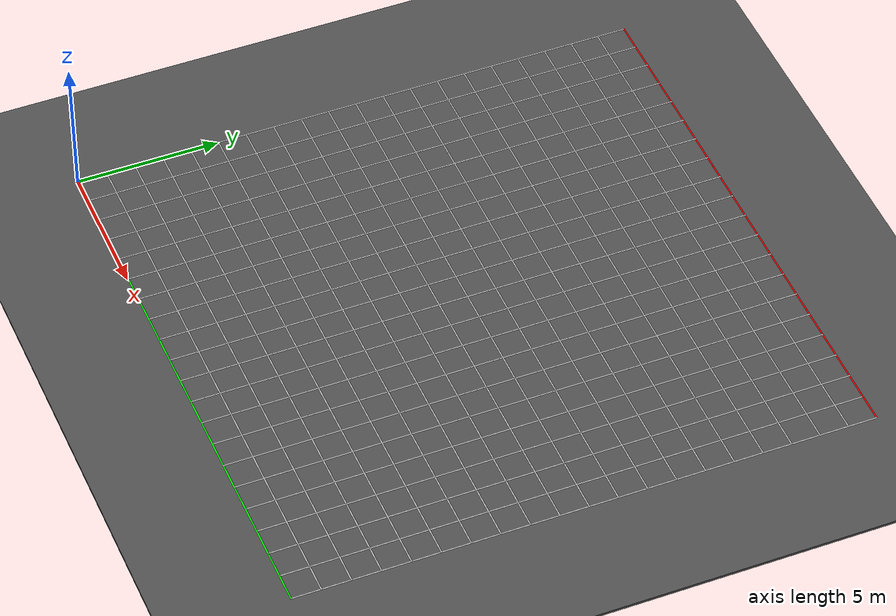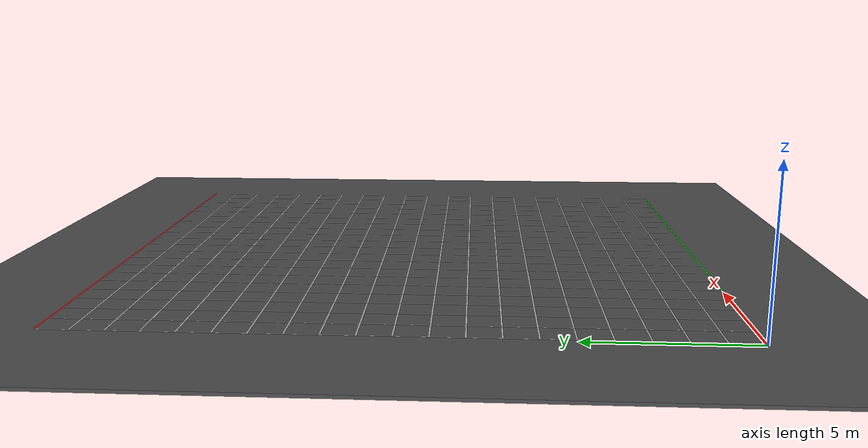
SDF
<sdf version="1.6">
 <world name="default">
  <light name="sun" type="directional">
   <pose>0 0 10 0 0 0</pose>
   <diffuse>0.8 0.8 0.8 1</diffuse>
   <specular>0.2 0.2 0.2 1</specular>
   <attenuation>
    <range>1000</range>
    <constant>0.9</constant>
    <linear>0.01</linear>
    <quadratic>0.001</quadratic>
   </attenuation>
   <direction>-0.5 0.1 -0.9</direction>
  </light>
  <model name="ground_plane">
   <static>1</static>
   <link name="link">
    <collision name="collision">
     <geometry><plane><normal>0 0 1</normal><size>100 100</size></plane></geometry>
     <surface><friction><ode><mu>100</mu><mu2>50</mu2></ode></friction></surface>
    </collision>
    <visual name="visual">
     <cast_shadows>0</cast_shadows>
     <geometry><plane><normal>0 0 1</normal><size>100 100</size></plane></geometry>
     <material>
      <script><uri>file://media/materials/scripts/gazebo.material</uri><name>Gazebo/Grey</name></script>
     </material>
    </visual>
   </link>
  </model>
  <gravity>0 0 -9.8</gravity>
  <magnetic_field>6e-06 2.3e-05 -4.2e-05</magnetic_field>
  <atmosphere type="adiabatic"/>
  <physics name="default_physics" default="0" type="ode">
   <max_step_size>0.001</max_step_size>
   <real_time_factor>1</real_time_factor>
   <real_time_update_rate>1000</real_time_update_rate>
  </physics>
  <scene><ambient>0.4 0.4 0.4 1</ambient><background>0.7 0.7 0.7 1</background><shadows>1</shadows></scene>
  <spherical_coordinates>
   <surface_model>EARTH_WGS84</surface_model>
   <latitude_deg>0</latitude_deg>
   <longitude_deg>0</longitude_deg>
   <elevation>0</elevation>
   <heading_deg>0</heading_deg>
  </spherical_coordinates>
  <model name="tape_court">
   <pose>0 0 0.05 0 0 0</pose>
   <link name="tape_strip::tape">
    <visual name="tape_strip::tape"><geometry><box><size>20.05 0.05 0.0003</size></box></geometry></visual>
    <pose>0.025 10.025 0 0 0 1.5708</pose>
   </link>
   <link name="tape_strip::tape">
    <visual name="tape_strip::tape"><geometry><box><size>20.05 0.05 0.0003</size></box></geometry></visual>
    <pose>0.025 10.025 0 0 0 1.5708</pose>
   </link>
   <link name="tape_strip::tape">
    <visual name="tape_strip::tape"><geometry><box><size>20.05 0.05 0.0003</size></box></geometry></visual>
    <pose>1.025 10.025 0 0 0 1.5708</pose>
   </link>
   <link name="tape_strip::tape">
    <visual name="tape_strip::tape"><geometry><box><size>20.05 0.05 0.0003</size></box></geometry></visual>
    <pose>2.025 10.025 0 0 0 1.5708</pose>
   </link>
   <static>1</static>
   <link name="tape_strip::tape">
    <visual name="tape_strip::tape"><geometry><box><size>20.05 0.05 0.0003</size></box></geometry></visual>
    <pose>3.025 10.025 0 0 0 1.5708</pose>
   </link>
   <static>1</static>
   <link name="tape_strip::tape">
    <visual name="tape_strip::tape"><geometry><box><size>20.05 0.05 0.0003</size></box></geometry></visual>
    <pose>4.025 10.025 0 0 0 1.5708</pose>
   </link>
   <static>1</static>
   <link name="tape_strip::tape">
    <visual name="tape_strip::tape"><geometry><box><size>20.05 0.05 0.0003</size></box></geometry></visual>
    <pose>5.025 10.025 0 0 0 1.5708</pose>
   </link>
   <static>1</static>
   <link name="tape_strip::tape">
    <visual name="tape_strip::tape"><geometry><box><size>20.05 0.05 0.0003</size></box></geometry></visual>
    <pose>6.025 10.025 0 0 0 1.5708</pose>
   </link>
   <static>1</static>
   <link name="tape_strip::tape">
    <visual name="tape_strip::tape"><geometry><box><size>20.05 0.05 0.0003</size></box></geometry></visual>
    <pose>7.025 10.025 0 0 0 1.5708</pose>
   </link>
   <static>1</static>
   <link name="tape_strip::tape">
    <visual name="tape_strip::tape"><geometry><box><size>20.05 0.05 0.0003</size></box></geometry></visual>
    <pose>8.025 10.025 0 0 0 1.5708</pose>
   </link>
   <static>1</static>
   <link name="tape_strip::tape">
    <visual name="tape_strip::tape"><geometry><box><size>20.05 0.05 0.0003</size></box></geometry></visual>
    <pose>9.025 10.025 0 0 0 1.5708</pose>
   </link>
   <static>1</static>
   <link name="tape_strip::tape">
    <visual name="tape_strip::tape"><geometry><box><size>20.05 0.05 0.0003</size></box></geometry></visual>
    <pose>10.025 10.025 0 0 0 1.5708</pose>
   </link>
   <static>1</static>
   <link name="tape_strip::tape">
    <visual name="tape_strip::tape"><geometry><box><size>20.05 0.05 0.0003</size></box></geometry></visual>
    <pose>11.025 10.025 0 0 0 1.5708</pose>
   </link>
   <static>1</static>
   <link name="tape_strip::tape">
    <visual name="tape_strip::tape"><geometry><box><size>20.05 0.05 0.0003</size></box></geometry></visual>
    <pose>12.025 10.025 0 0 0 1.5708</pose>
   </link>
   <static>1</static>
   <link name="tape_strip::tape">
    <visual name="tape_strip::tape"><geometry><box><size>20.05 0.05 0.0003</size></box></geometry></visual>
    <pose>13.025 10.025 0 0 0 1.5708</pose>
   </link>
   <static>1</static>
   <link name="tape_strip::tape">
    <visual name="tape_strip::tape"><geometry><box><size>20.05 0.05 0.0003</size></box></geometry></visual>
    <pose>14.025 10.025 0 0 0 1.5708</pose>
   </link>
   <static>1</static>
   <link name="tape_strip::tape">
    <visual name="tape_strip::tape"><geometry><box><size>20.05 0.05 0.0003</size></box></geometry></visual>
    <pose>15.025 10.025 0 0 0 1.5708</pose>
   </link>
   <static>1</static>
   <link name="tape_strip::tape">
    <visual name="tape_strip::tape"><geometry><box><size>20.05 0.05 0.0003</size></box></geometry></visual>
    <pose>16.025 10.025 0 0 0 1.5708</pose>
   </link>
   <static>1</static>
   <link name="tape_strip::tape">
    <visual name="tape_strip::tape"><geometry><box><size>20.05 0.05 0.0003</size></box></geometry></visual>
    <pose>17.025 10.025 0 0 0 1.5708</pose>
   </link>
   <static>1</static>
   <link name="tape_strip::tape">
    <visual name="tape_strip::tape"><geometry><box><size>20.05 0.05 0.0003</size></box></geometry></visual>
    <pose>18.025 10.025 0 0 0 1.5708</pose>
   </link>
   <static>1</static>
   <link name="tape_strip::tape">
    <visual name="tape_strip::tape"><geometry><box><size>20.05 0.05 0.0003</size></box></geometry></visual>
    <pose>19.025 10.025 0 0 0 1.5708</pose>
   </link>
   <static>1</static>
   <link name="tape_strip::tape">
    <visual name="tape_strip::tape"><geometry><box><size>20.05 0.05 0.0003</size></box></geometry></visual>
    <pose>20.025 10.025 0 0 0 1.5708</pose>
   </link>
   <static>1</static>
   <link name="tape_strip::tape">
    <visual name="tape_strip::tape">
     <geometry><box><size>20.05 0.05 0.0003</size></box></geometry>
     <material><ambient>0 1 0 1</ambient><diffuse>0 1 0 1</diffuse><specular>0 1 0 1</specular></material>
    </visual>
    <pose>10.025 0.025 0 0 0 3.14159</pose>
   </link>
   <static>1</static>
   <link name="tape_strip::tape">
    <visual name="tape_strip::tape"><geometry><box><size>20.05 0.05 0.0003</size></box></geometry></visual>
    <pose>10.025 1.025 0 0 0 3.14159</pose>
   </link>
   <static>1</static>
   <link name="tape_strip::tape">
    <visual name="tape_strip::tape"><geometry><box><size>20.05 0.05 0.0003</size></box></geometry></visual>
    <pose>10.025 2.025 0 0 0 3.14159</pose>
   </link>
   <static>1</static>
   <link name="tape_strip::tape">
    <visual name="tape_strip::tape"><geometry><box><size>20.05 0.05 0.0003</size></box></geometry></visual>
    <pose>10.025 3.025 0 0 0 3.14159</pose>
   </link>
   <static>1</static>
   <link name="tape_strip::tape">
    <visual name="tape_strip::tape"><geometry><box><size>20.05 0.05 0.0003</size></box></geometry></visual>
    <pose>10.025 4.025 0 0 0 3.14159</pose>
   </link>
   <static>1</static>
   <link name="tape_strip::tape">
    <visual name="tape_strip::tape"><geometry><box><size>20.05 0.05 0.0003</size></box></geometry></visual>
    <pose>10.025 5.025 0 0 0 3.14159</pose>
   </link>
   <static>1</static>
   <link name="tape_strip::tape">
    <visual name="tape_strip::tape"><geometry><box><size>20.05 0.05 0.0003</size></box></geometry></visual>
    <pose>10.025 6.025 0 0 0 3.14159</pose>
   </link>
   <static>1</static>
   <link name="tape_strip::tape">
    <visual name="tape_strip::tape"><geometry><box><size>20.05 0.05 0.0003</size></box></geometry></visual>
    <pose>10.025 7.025 0 0 0 3.14159</pose>
   </link>
   <static>1</static>
   <link name="tape_strip::tape">
    <visual name="tape_strip::tape"><geometry><box><size>20.05 0.05 0.0003</size></box></geometry></visual>
    <pose>10.025 8.025 0 0 0 3.14159</pose>
   </link>
   <static>1</static>
   <link name="tape_strip::tape">
    <visual name="tape_strip::tape"><geometry><box><size>20.05 0.05 0.0003</size></box></geometry></visual>
    <pose>10.025 9.025 0 0 0 3.14159</pose>
   </link>
   <static>1</static>
   <link name="tape_strip::tape">
    <visual name="tape_strip::tape"><geometry><box><size>20.05 0.05 0.0003</size></box></geometry></visual>
    <pose>10.025 10.025 0 0 0 3.14159</pose>
   </link>
   <static>1</static>
   <link name="tape_strip::tape">
    <visual name="tape_strip::tape"><geometry><box><size>20.05 0.05 0.0003</size></box></geometry></visual>
    <pose>10.025 11.025 0 0 0 3.14159</pose>
   </link>
   <static>1</static>
   <link name="tape_strip::tape">
    <visual name="tape_strip::tape"><geometry><box><size>20.05 0.05 0.0003</size></box></geometry></visual>
    <pose>10.025 12.025 0 0 0 3.14159</pose>
   </link>
   <static>1</static>
   <link name="tape_strip::tape">
    <visual name="tape_strip::tape"><geometry><box><size>20.05 0.05 0.0003</size></box></geometry></visual>
    <pose>10.025 13.025 0 0 0 3.14159</pose>
   </link>
   <static>1</static>
   <link name="tape_strip::tape">
    <visual name="tape_strip::tape"><geometry><box><size>20.05 0.05 0.0003</size></box></geometry></visual>
    <pose>10.025 14.025 0 0 0 3.14159</pose>
   </link>
   <static>1</static>
   <link name="tape_strip::tape">
    <visual name="tape_strip::tape"><geometry><box><size>20.05 0.05 0.0003</size></box></geometry></visual>
    <pose>10.025 15.025 0 0 0 3.14159</pose>
   </link>
   <static>1</static>
   <link name="tape_strip::tape">
    <visual name="tape_strip::tape"><geometry><box><size>20.05 0.05 0.0003</size></box></geometry></visual>
    <pose>10.025 16.025 0 0 0 3.14159</pose>
   </link>
   <static>1</static>
   <link name="tape_strip::tape">
    <visual name="tape_strip::tape"><geometry><box><size>20.05 0.05 0.0003</size></box></geometry></visual>
    <pose>10.025 17.025 0 0 0 3.14159</pose>
   </link>
   <static>1</static>
   <link name="tape_strip::tape">
    <visual name="tape_strip::tape"><geometry><box><size>20.05 0.05 0.0003</size></box></geometry></visual>
    <pose>10.025 18.025 0 0 0 3.14159</pose>
   </link>
   <static>1</static>
   <link name="tape_strip::tape">
    <visual name="tape_strip::tape"><geometry><box><size>20.05 0.05 0.0003</size></box></geometry></visual>
    <pose>10.025 19.025 0 0 0 3.14159</pose>
   </link>
   <static>1</static>
   <link name="tape_strip::tape">
    <visual name="tape_strip::tape">
     <geometry><box><size>20.05 0.05 0.0003</size></box></geometry>
     <material><ambient>1 0 0 1</ambient><diffuse>1 0 0 1</diffuse><specular>1 0 0 1</specular></material>
    </visual>
    <pose>10.025 20.025 0 0 0 3.14159</pose>
   </link>
  </model>
  <model name="asphalt_plane">
   <static>1</static>
   <link name="link">
    <collision name="collision"><geometry><box><size>100 100 0.1</size></box></geometry></collision>
    <visual name="visual">
     <cast_shadows>0</cast_shadows>
     <geometry><box><size>100 100 0.1</size></box></geometry>
     <material>
      <script>
       <uri>model://asphalt_plane/materials/scripts</uri>
       <uri>model://asphalt_plane/materials/textures</uri>
       <name>vrc/asphalt</name>
      </script>
     </material>
    </visual>
   </link>
  </model>
 </world>
</sdf>
